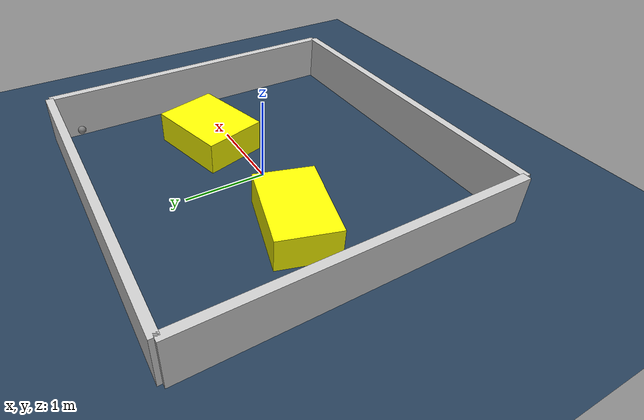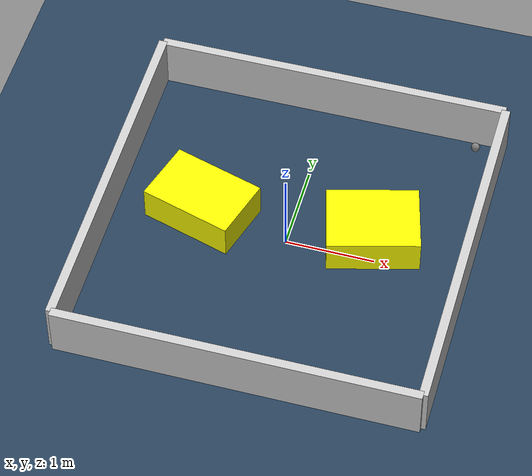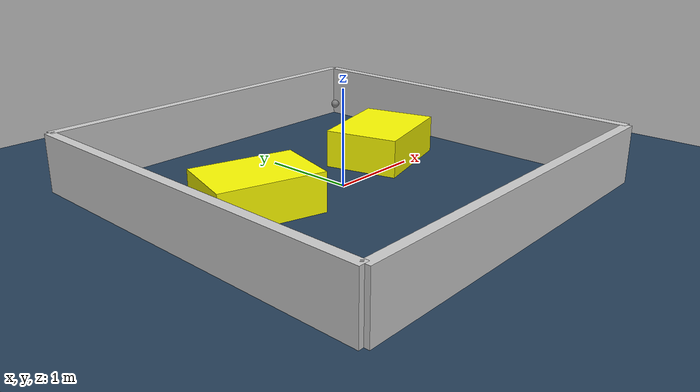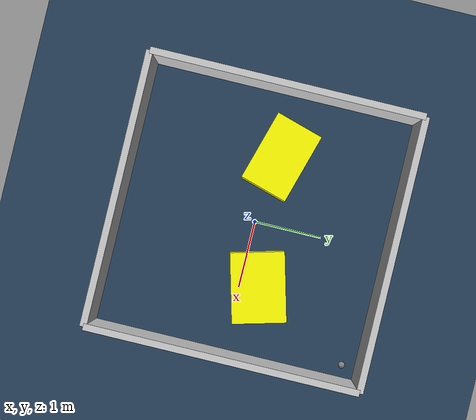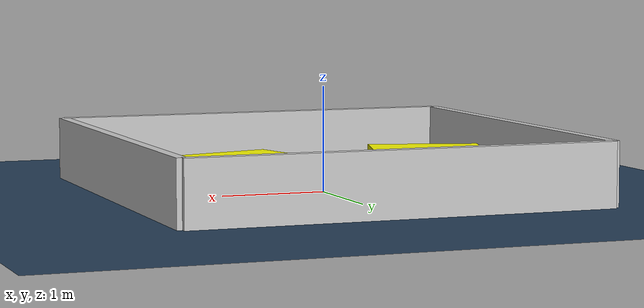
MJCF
<?xml version="1.0" ?>
<mujoco model="generated_environment">
  <option timestep="0.01" integrator="RK4" cone="elliptic"/>
  <default>
    <geom density="1"/>
  </default>
  <asset>
    <texture builtin="gradient" height="3072" rgb1="0.3 0.5 0.7" rgb2="0 0 0" type="skybox" width="512"/>
    <texture builtin="checker" height="300" mark="edge" markrgb="0.8 0.8 0.8" name="groundplane" rgb1="0.2 0.3 0.4" rgb2="0.1 0.2 0.3" type="2d" width="300"/>
    <material name="groundplane" reflectance="0.2" texrepeat="5 5" texture="groundplane" texuniform="true"/>
    <material name="robot" rgba="0.0 1.0 0.0 1"/>
  </asset>
  <worldbody>
    <light dir="0 0 -1" directional="true" pos="0 0 1.5"/>
    <geom condim="4" friction="1.0 0.005 0.001" material="groundplane" name="floor" size="0 0 0.05" type="plane"/>
    <body name="walls">
      <geom name="wall_1" condim="4" pos="-2.0 0.0 0.3" rgba="0.800000011920929 0.800000011920929 0.800000011920929 1.0" size="0.05 2.0 0.3" type="box"/>
      <geom name="wall_2" condim="4" pos="2.0 0.0 0.3" rgba="0.800000011920929 0.800000011920929 0.800000011920929 1.0" size="0.05 2.0 0.3" type="box"/>
      <geom name="wall_3" condim="4" pos="0.0 -2.0 0.3" rgba="0.800000011920929 0.800000011920929 0.800000011920929 1.0" size="2.0 0.05 0.3" type="box"/>
      <geom name="wall_4" condim="4" pos="0.0 2.0 0.3" rgba="0.800000011920929 0.800000011920929 0.800000011920929 1.0" size="2.0 0.05 0.3" type="box"/>
    </body>
    <body name="robot">
      <joint name="joint_x" type="slide" pos="0 0 0" axis="1 0 0"/>
      <joint name="joint_y" type="slide" pos="0 0 0" axis="0 1 0"/>
      <geom name="robot" type="sphere" pos="1.7362621293099867 1.7248899993490312 0.2" size="0.05" mass="5." friction="1.0 0.005 0.0001" condim="4"/>
      <site name="sensor_ball"/>
    </body>
    <body name="obstacle_1_movable">
      <geom name="obstacle_1_movable" condim="4" pos="-0.993951983516827 0.15764514312661548 0.2" euler="0 0 163.62323421949222" friction="1.0 0.005 0.001" rgba="1 1 0 1" size="0.5301706305271705 0.35809490323091214 0.2" type="box" mass="0.1"/>
      <joint type="free"/>
    </body>
    <body name="obstacle_2_movable">
      <geom name="obstacle_2_movable" condim="4" pos="0.9095824585745296 0.2719141769789839 0.2" euler="0 0 15.029385125228405" friction="1.0 0.005 0.001" rgba="1 1 0 1" size="0.5104248156800286 0.3938063435503091 0.2" type="box" mass="0.1"/>
      <joint type="free"/>
    </body>
  </worldbody>
  <actuator>
    <motor name="actuator_x" joint="joint_x" gear="1" ctrlrange="-1 1"/>
    <motor name="actuator_y" joint="joint_y" gear="1" ctrlrange="-1 1"/>
  </actuator>
</mujoco>
